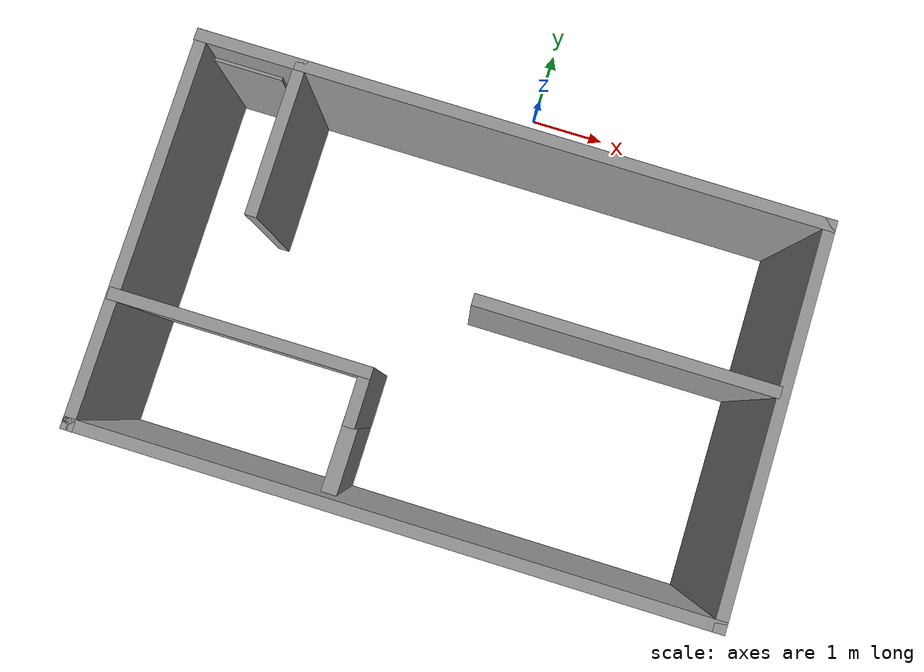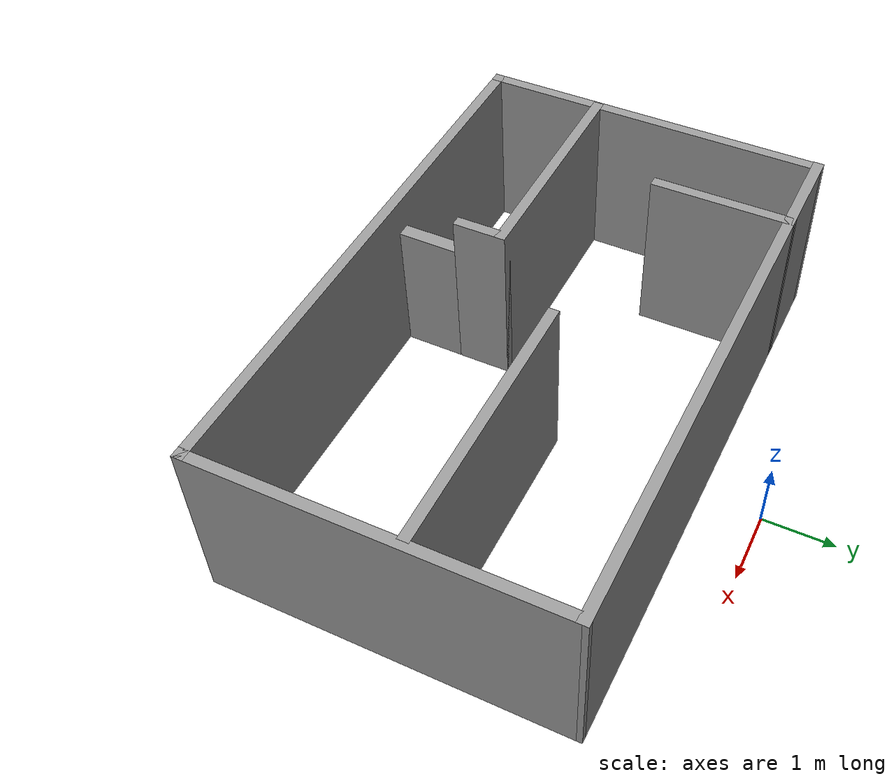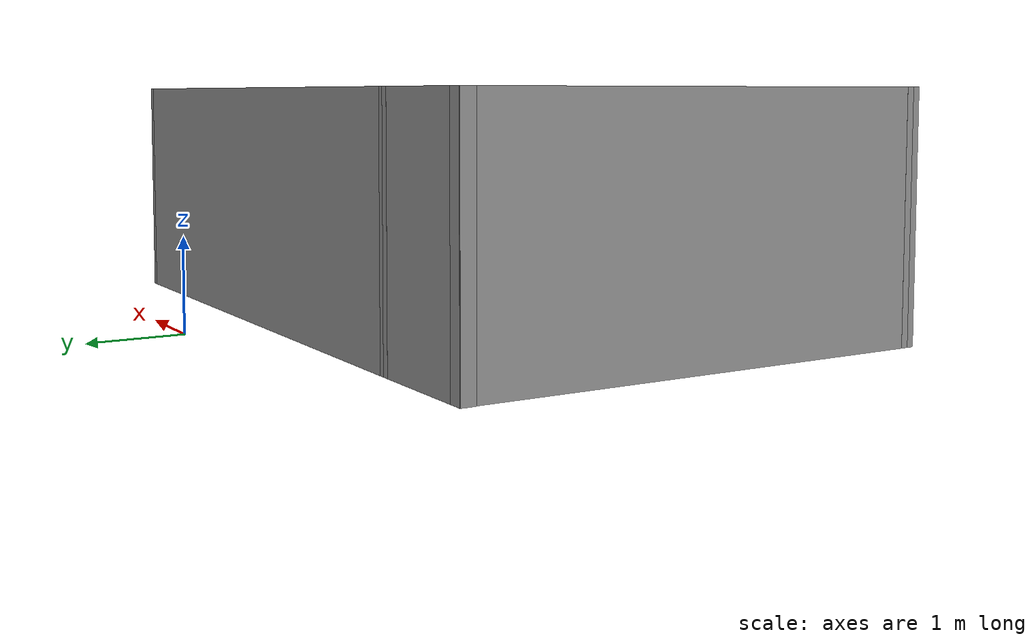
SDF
<?xml version='1.0'?>
<sdf version='1.7'>
  <model name='room'>
    <pose>-0.195041 -2.92285 0 0 -0 0</pose>
    <link name='Door_0'>
      <collision name='Door_0_Collision'>
        <geometry>
          <box>
            <size>0.9 0.17 2</size>
          </box>
        </geometry>
        <pose>0 0 1 0 -0 0</pose>
      </collision>
      <visual name='Door_0_Visual'>
        <pose>0 0 1 0 -0 0</pose>
        <geometry>
          <box>
            <size>0.9 0.17 2</size>
          </box>
        </geometry>
        <material>
          <script>
            <uri>file://media/materials/scripts/gazebo.material</uri>
            <name>Gazebo/Grey</name>
          </script>
        </material>
      </visual>
      <pose>-3.39496 1.99285 0 0 -0 0</pose>
    </link>
    <link name='Door_2'>
      <collision name='Door_2_Collision'>
        <geometry>
          <box>
            <size>0.94 0.2 2</size>
          </box>
        </geometry>
        <pose>0 0 1 0 -0 0</pose>
      </collision>
      <visual name='Door_2_Visual'>
        <pose>0 0 1 0 -0 0</pose>
        <geometry>
          <box>
            <size>0.94 0.2 2</size>
          </box>
        </geometry>
        <material>
          <script>
            <uri>file://media/materials/scripts/gazebo.material</uri>
            <name>Gazebo/Grey</name>
          </script>
        </material>
      </visual>
      <pose>-0.834959 -2.30715 0 0 0 -1.57804</pose>
    </link>
    <link name='Wall_0'>
      <collision name='Wall_0_Collision'>
        <geometry>
          <box>
            <size>5.02083 0.15 2.5</size>
          </box>
        </geometry>
        <pose>0 0 1.25 0 -0 0</pose>
      </collision>
      <visual name='Wall_0_Visual'>
        <pose>0 0 1.25 0 -0 0</pose>
        <geometry>
          <box>
            <size>5.02083 0.15 2.5</size>
          </box>
        </geometry>
        <material>
          <script>
            <uri>file://media/materials/scripts/gazebo.material</uri>
            <name>Gazebo/Grey</name>
          </script>
          <ambient>1 1 1 1</ambient>
        </material>
        <meta>
          <layer>0</layer>
        </meta>
      </visual>
      <pose>-3.91496 -0.412149 0 0 -0 -1.5749</pose>
    </link>
    <link name='Wall_1'>
      <collision name='Wall_1_Collision'>
        <geometry>
          <box>
            <size>0.15 0.15 2.5</size>
          </box>
        </geometry>
        <pose>0 0 1.25 0 -0 0</pose>
      </collision>
      <visual name='Wall_1_Visual'>
        <pose>0 0 1.25 0 -0 0</pose>
        <geometry>
          <box>
            <size>0.15 0.15 2.5</size>
          </box>
        </geometry>
        <material>
          <script>
            <uri>file://media/materials/scripts/gazebo.material</uri>
            <name>Gazebo/Grey</name>
          </script>
          <ambient>1 1 1 1</ambient>
        </material>
        <meta>
          <layer>0</layer>
        </meta>
      </visual>
      <pose>-3.92496 -2.84715 0 0 -0 0</pose>
    </link>
    <link name='Wall_10'>
      <collision name='Wall_10_Collision'>
        <geometry>
          <box>
            <size>3.25 0.15 2.5</size>
          </box>
        </geometry>
        <pose>0 0 1.25 0 -0 0</pose>
      </collision>
      <visual name='Wall_10_Visual'>
        <pose>0 0 1.25 0 -0 0</pose>
        <geometry>
          <box>
            <size>3.25 0.15 2.5</size>
          </box>
        </geometry>
        <material>
          <script>
            <uri>file://media/materials/scripts/gazebo.material</uri>
            <name>Gazebo/Grey</name>
          </script>
          <ambient>1 1 1 1</ambient>
        </material>
        <meta>
          <layer>0</layer>
        </meta>
      </visual>
      <pose>-2.35496 -1.25715 0 0 -0 0</pose>
    </link>
    <link name='Wall_12'>
      <collision name='Wall_12_Collision'>
        <geometry>
          <box>
            <size>0.75 0.15 2.5</size>
          </box>
        </geometry>
        <pose>0 0 1.25 0 -0 0</pose>
      </collision>
      <visual name='Wall_12_Visual'>
        <pose>0 0 1.25 0 -0 0</pose>
        <geometry>
          <box>
            <size>0.75 0.15 2.5</size>
          </box>
        </geometry>
        <material>
          <script>
            <uri>file://media/materials/scripts/gazebo.material</uri>
            <name>Gazebo/Grey</name>
          </script>
          <ambient>1 1 1 1</ambient>
        </material>
        <meta>
          <layer>0</layer>
        </meta>
      </visual>
      <pose>-0.804959 -1.55715 0 0 -0 -1.5708</pose>
    </link>
    <link name='Wall_14'>
      <collision name='Wall_14_Collision'>
        <geometry>
          <box>
            <size>3.75 0.15 2.5</size>
          </box>
        </geometry>
        <pose>0 0 1.25 0 -0 0</pose>
      </collision>
      <visual name='Wall_14_Visual'>
        <pose>0 0 1.25 0 -0 0</pose>
        <geometry>
          <box>
            <size>3.75 0.15 2.5</size>
          </box>
        </geometry>
        <material>
          <script>
            <uri>file://media/materials/scripts/gazebo.material</uri>
            <name>Gazebo/Grey</name>
          </script>
          <ambient>1 1 1 1</ambient>
        </material>
        <meta>
          <layer>0</layer>
        </meta>
      </visual>
      <pose>2.01504 -0.077149 0 0 -0 0</pose>
    </link>
    <link name='Wall_2'>
      <collision name='Wall_2_Collision'>
        <geometry>
          <box>
            <size>8 0.15 2.5</size>
          </box>
        </geometry>
        <pose>0 0 1.25 0 -0 0</pose>
      </collision>
      <visual name='Wall_2_Visual'>
        <pose>0 0 1.25 0 -0 0</pose>
        <geometry>
          <box>
            <size>8 0.15 2.5</size>
          </box>
        </geometry>
        <material>
          <script>
            <uri>file://media/materials/scripts/gazebo.material</uri>
            <name>Gazebo/Grey</name>
          </script>
          <ambient>1 1 1 1</ambient>
        </material>
        <meta>
          <layer>0</layer>
        </meta>
      </visual>
      <pose>4.1e-05 -2.84715 0 0 -0 0</pose>
    </link>
    <link name='Wall_3'>
      <collision name='Wall_3_Collision'>
        <geometry>
          <box>
            <size>5 0.15 2.5</size>
          </box>
        </geometry>
        <pose>0 0 1.25 0 -0 0</pose>
      </collision>
      <visual name='Wall_3_Visual'>
        <pose>0 0 1.25 0 -0 0</pose>
        <geometry>
          <box>
            <size>5 0.15 2.5</size>
          </box>
        </geometry>
        <material>
          <script>
            <uri>file://media/materials/scripts/gazebo.material</uri>
            <name>Gazebo/Grey</name>
          </script>
          <ambient>1 1 1 1</ambient>
        </material>
        <meta>
          <layer>0</layer>
        </meta>
      </visual>
      <pose>3.92504 -0.422149 0 0 -0 1.5708</pose>
    </link>
    <link name='Wall_4'>
      <collision name='Wall_4_Collision'>
        <geometry>
          <box>
            <size>6.73003 0.15 2.5</size>
          </box>
        </geometry>
        <pose>0 0 1.25 0 -0 0</pose>
      </collision>
      <visual name='Wall_4_Visual'>
        <pose>0 0 1.25 0 -0 0</pose>
        <geometry>
          <box>
            <size>6.73003 0.15 2.5</size>
          </box>
        </geometry>
        <material>
          <script>
            <uri>file://media/materials/scripts/gazebo.material</uri>
            <name>Gazebo/Grey</name>
          </script>
          <ambient>1 1 1 1</ambient>
        </material>
        <meta>
          <layer>0</layer>
        </meta>
      </visual>
      <pose>0.635041 2.01285 0 0 -0 3.13855</pose>
    </link>
    <link name='Wall_6'>
      <collision name='Wall_6_Collision'>
        <geometry>
          <box>
            <size>1.4 0.15 2.5</size>
          </box>
        </geometry>
        <pose>0 0 1.25 0 -0 0</pose>
      </collision>
      <visual name='Wall_6_Visual'>
        <pose>0 0 1.25 0 -0 0</pose>
        <geometry>
          <box>
            <size>1.4 0.15 2.5</size>
          </box>
        </geometry>
        <material>
          <script>
            <uri>file://media/materials/scripts/gazebo.material</uri>
            <name>Gazebo/Grey</name>
          </script>
          <ambient>1 1 1 1</ambient>
        </material>
        <meta>
          <layer>0</layer>
        </meta>
      </visual>
      <pose>-3.28996 2.02285 0 0 -0 -3.14159</pose>
    </link>
    <link name='Wall_8'>
      <collision name='Wall_8_Collision'>
        <geometry>
          <box>
            <size>2 0.15 2.5</size>
          </box>
        </geometry>
        <pose>0 0 1.25 0 -0 0</pose>
      </collision>
      <visual name='Wall_8_Visual'>
        <pose>0 0 1.25 0 -0 0</pose>
        <geometry>
          <box>
            <size>2 0.15 2.5</size>
          </box>
        </geometry>
        <material>
          <script>
            <uri>file://media/materials/scripts/gazebo.material</uri>
            <name>Gazebo/Grey</name>
          </script>
          <ambient>1 1 1 1</ambient>
        </material>
        <meta>
          <layer>0</layer>
        </meta>
      </visual>
      <pose>-2.66496 1.09785 0 0 -0 -1.5708</pose>
    </link>
    <static>1</static>
  </model>
</sdf>
